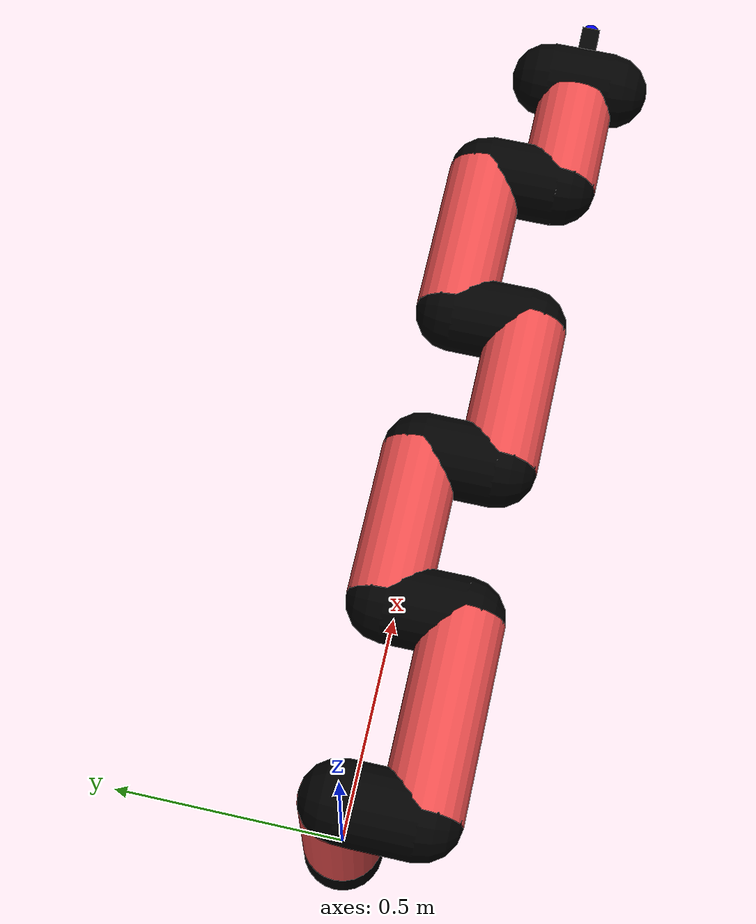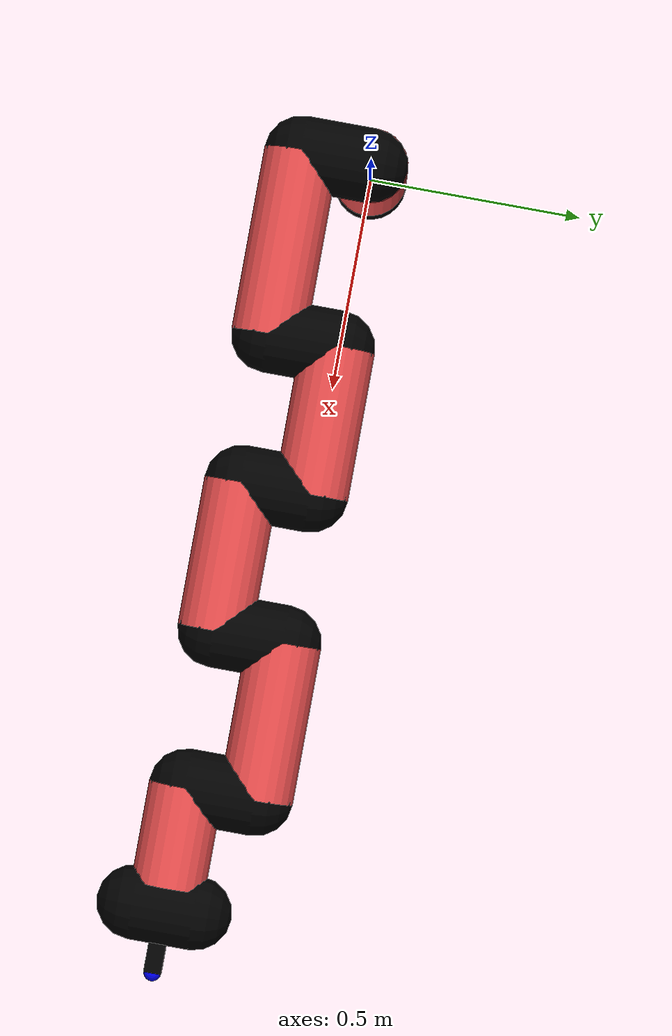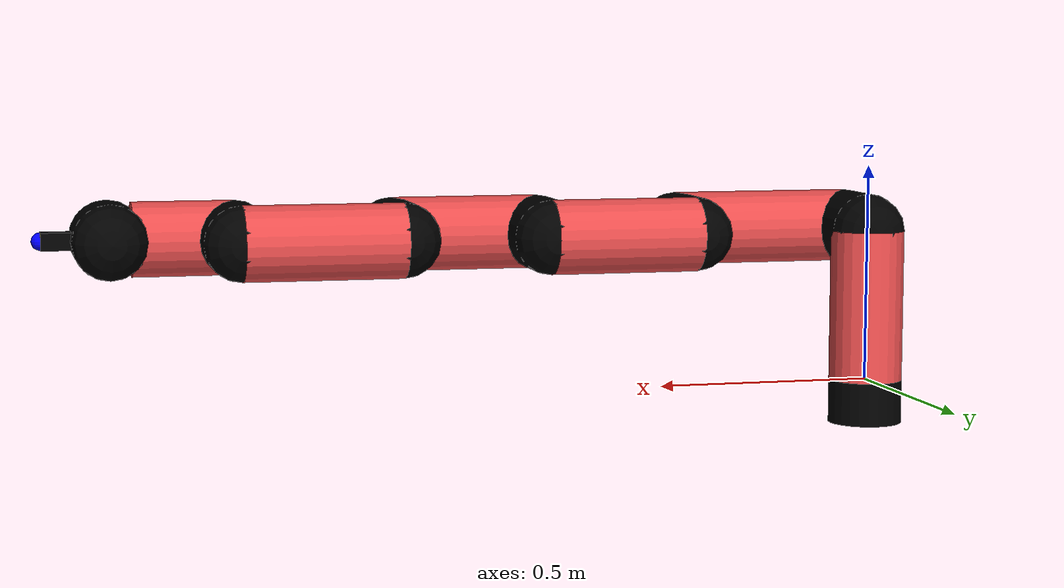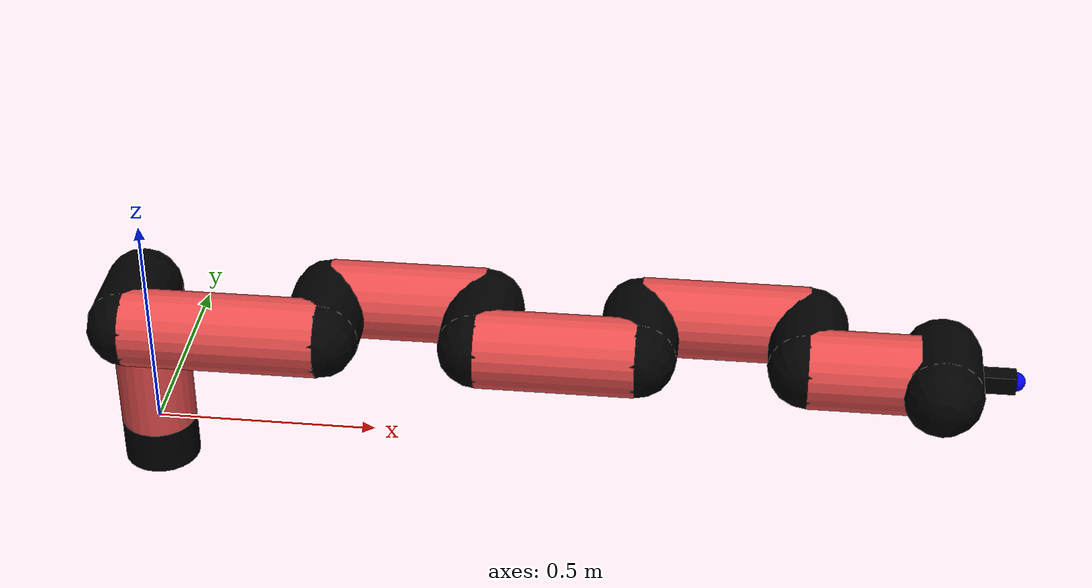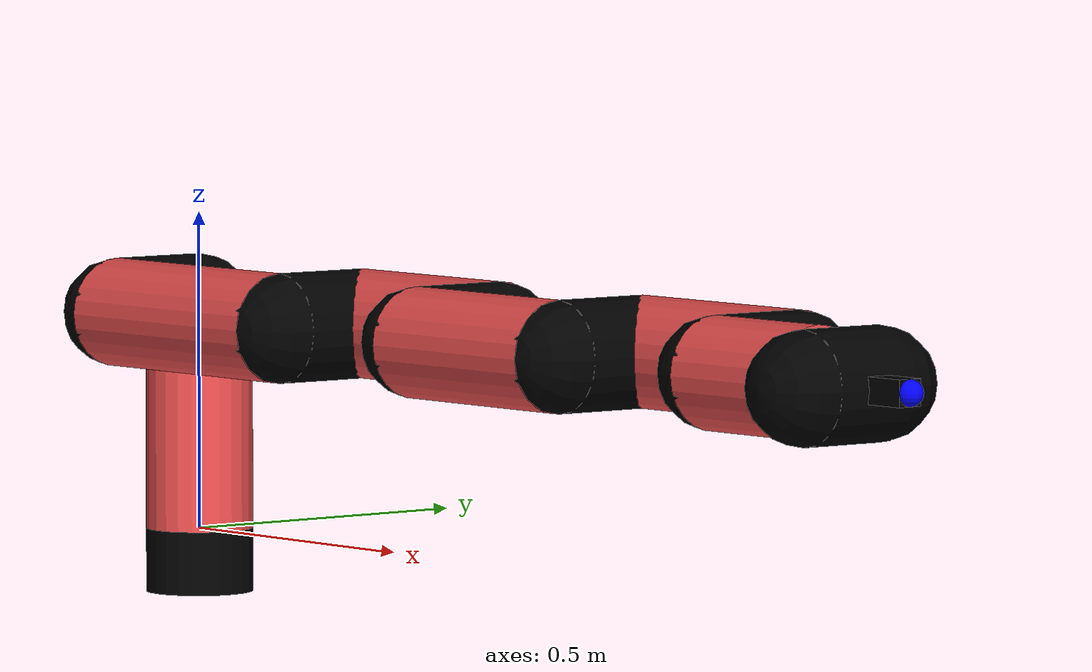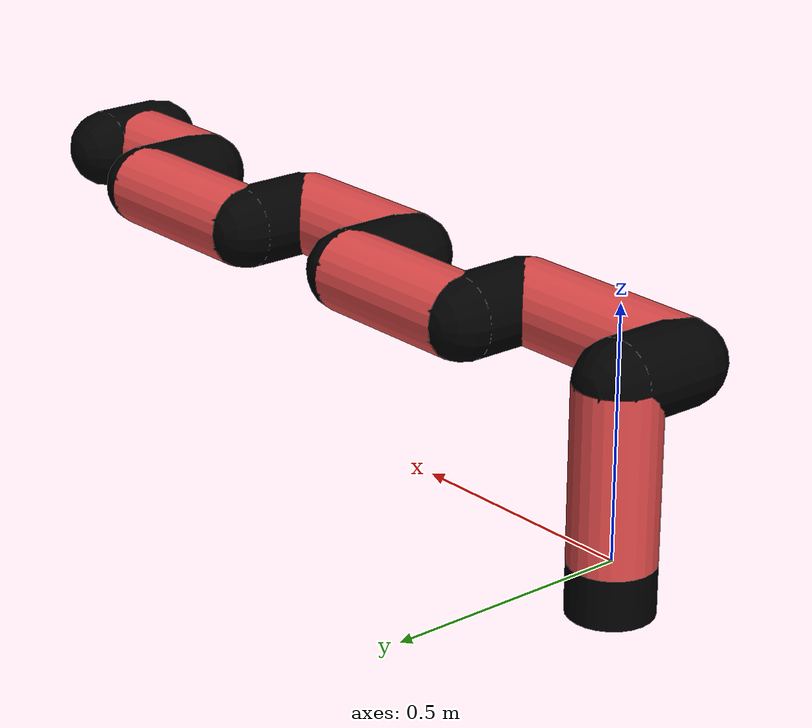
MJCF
<mujoco model="manipulator">
		<compiler angle="degree" coordinate="local" inertiafromgeom="auto" meshdir="meshes/"/>
		<option gravity="0 0 0" integrator="RK4" iterations="30" timestep="0.01"/>

		<default>
		<joint armature="1" limited="true" stiffness="10" damping="15" frictionloss="5.0"/>
		<geom conaffinity="1" condim="3" contype="1" friction=".5 .1 .1" margin="0.002"/>
		<motor ctrllimited="true"/>
		<position ctrllimited="true"/>
		</default>

		<asset>
		<texture builtin="gradient" height="100" rgb1="1.0 1.0 1.0" rgb2="1.0 1.0 1.0" type="skybox" width="100"/>
		<texture builtin="flat" height="32" name="arm_tex" rgb1="0.9 0.3 0.3" type="2d" width="32"/>
		<texture builtin="flat" height="32" name="gripper_tex" rgb1="0.0 0.0 0.0" type="cube" width="32"/>

		<material name="arm_mat" shininess="0.1" specular="0.1" texture="arm_tex"/>
		<material name="gripper_mat" shininess="1" specular="1" texture="gripper_tex"/>
		</asset>

		<worldbody>
		<light cutoff="45" diffuse=".8 .8 .8" dir="0 0.16 -1" directional="false" name="light" pos="0 -2.0 8.0" specular="0.3 0.3 0.3"/>

		<body name="base_link" pos="0 0 -0.1">
		<geom fromto="0 0 0 0 0 0.1" material="arm_mat" name="base_link" rgba="0.0 0.0 0.0 1" size="0.085" type="cylinder"/>
		</body>

		<body name="l1" pos="0 0 0">
<geom fromto="0 0 0 0 0 0.35" material="arm_mat" name="l1" rgba="0.9 0.3 0.3 1" size="0.085" type="cylinder"/>
<geom fromto="0 0 0.35 0 -0.16 0.35" material="arm_mat" name="l1_ex" rgba="0.0 0.0 0.0 1" size="0.085" type="capsule"/>
<joint axis="0 0 1" name="j1" pos="0 0 0" range="-90 90" damping="22.67" frictionloss="9.85"/>

<body name="l2" pos="0 -0.16 0.35">
<geom fromto="0 0 0 0.42 0 0" material="arm_mat" name="l2" rgba="0.9 0.3 0.3 1" size="0.085" type="cylinder"/>
<geom fromto="0.42 0 0 0.42 0.16 0" material="arm_mat" name="l2_ex" rgba="0.0 0.0 0.0 1" size="0.085" type="capsule"/>
<joint axis="0.0 1.0 0.0" name="j2" pos="0 0 0" range="-90 60" damping="23.58" frictionloss="12.23"/>

<body name="l3" pos="0.42 0.16 0">
<geom fromto="0 0 0 0.34 0 0" material="arm_mat" name="l3" rgba="0.9 0.3 0.3 1" size="0.085" type="cylinder"/>
<geom fromto="0.34 0 0 0.34 -0.16 0" material="arm_mat" name="l3_ex" rgba="0.0 0.0 0.0 1" size="0.085" type="capsule"/>
<joint axis="0.0 1.0 0.0" name="j3" pos="0 0 0" range="-30 60" damping="34.11" frictionloss="11.54"/>

<body name="l4" pos="0.34 -0.16 0">
<geom fromto="0 0 0 0.34 0 0" material="arm_mat" name="l4" rgba="0.9 0.3 0.3 1" size="0.085" type="cylinder"/>
<geom fromto="0.34 0 0 0.34 0.16 0" material="arm_mat" name="l4_ex" rgba="0.0 0.0 0.0 1" size="0.085" type="capsule"/>
<joint axis="0.0 1.0 0.0" name="j4" pos="0 0 0" range="-30 60" damping="29.32" frictionloss="12.17"/>

<body name="l5" pos="0.34 0.16 0">
<geom fromto="0 0 0 0.36 0 0" material="arm_mat" name="l5" rgba="0.9 0.3 0.3 1" size="0.085" type="cylinder"/>
<geom fromto="0.36 0 0 0.36 -0.16 0" material="arm_mat" name="l5_ex" rgba="0.0 0.0 0.0 1" size="0.085" type="capsule"/>
<joint axis="0.0 1.0 0.0" name="j5" pos="0 0 0" range="-30 60" damping="36.8" frictionloss="9.29"/>

<body name="l6" pos="0.36 -0.16 0">
<geom fromto="0 0 0 0.23 0 0" material="arm_mat" name="l6" rgba="0.9 0.3 0.3 1" size="0.085" type="cylinder"/>
<joint axis="0.0 1.0 0.0" name="j6" pos="0 0 0" range="-30 60" damping="34.99" frictionloss="10.59"/>

<body name="gripper" pos="0.23 0 0">
<geom fromto="0.05 -0.07 0 0.05 0.07 0" material="gripper_mat" name="gripper" rgba="0.0 0.0 0.0 1" size="0.085" type="capsule"/><joint axis="1 0 0" name="j7" pos="0 0 0" range="-90 90" damping="15" frictionloss="5.0"/><body name="finger" pos="0.1 0 0">
<geom fromto="0 0.0 0 0.1 0.0 0" material="gripper_mat" name="finger" rgba="0.0 0.0 0.0 1" size="0.020 0.06 0.06" type="box"/>
</body>
<site name="current" pos="0.2 0. 0.0" rgba="0. 0. 1.0 1" size="0.02" type="sphere"/>
</body>
</body>
</body>
</body>
</body>
</body>
</body>
</worldbody>
<actuator>
<motor ctrllimited="true" ctrlrange="-1.0 1.0" joint="j1" gear="67.94"/>
<motor ctrllimited="true" ctrlrange="-1.0 1.0" joint="j2" gear="75.66"/>
<motor ctrllimited="true" ctrlrange="-1.0 1.0" joint="j3" gear="72.1"/>
<motor ctrllimited="true" ctrlrange="-1.0 1.0" joint="j4" gear="87.22"/>
<motor ctrllimited="true" ctrlrange="-1.0 1.0" joint="j5" gear="74.27"/>
<motor ctrllimited="true" ctrlrange="-1.0 1.0" joint="j6" gear="66.58"/>
<motor ctrllimited="true" ctrlrange="-1.0 1.0" joint="j7" gear="80"/>
</actuator>
</mujoco>
